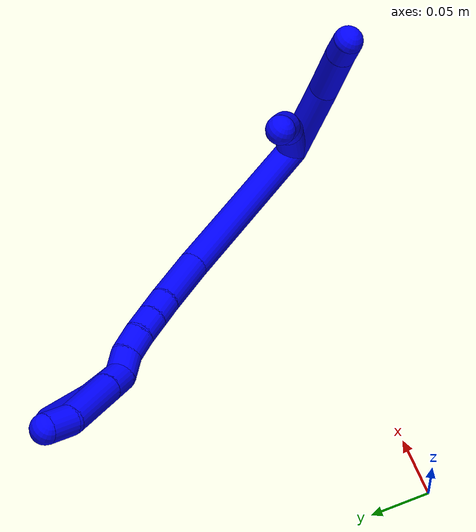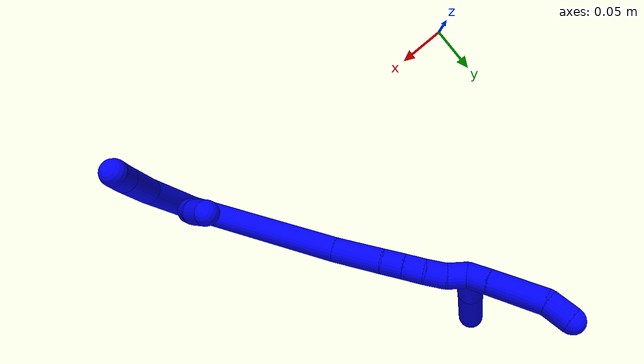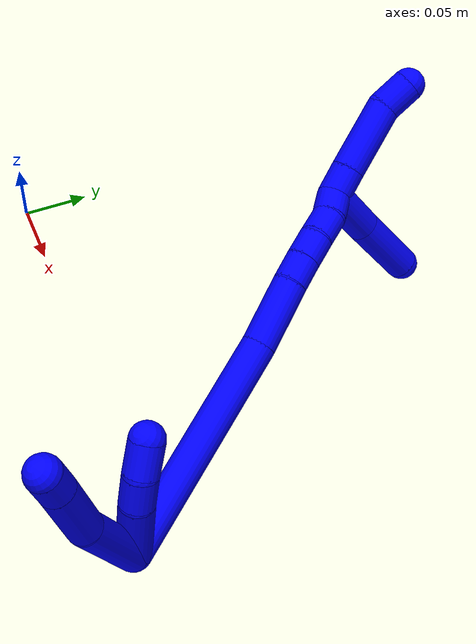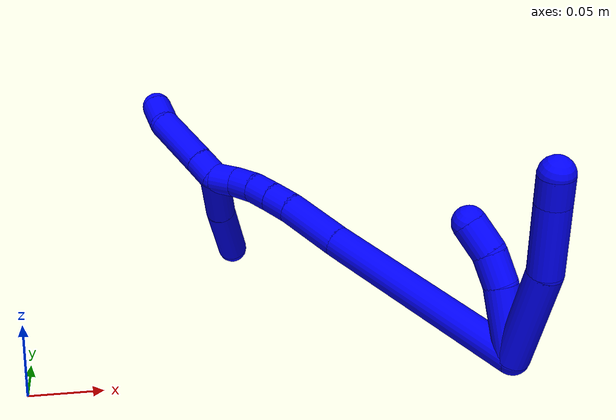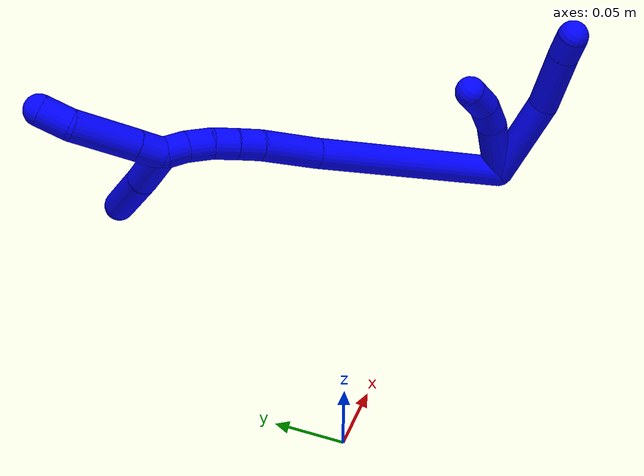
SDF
<sdf version="1.7">
 <world name="default">
  <model name="1">
   <static>0</static>
   <link name="1">
    <collision name="collision-cylinder-e_1_2_8">
     <pose>-0.004051 -0.002596 -0.038727 3.07467 -0.104007 -1.99852</pose>
     <geometry><cylinder><radius>0.0125</radius><length>0.078049</length></cylinder></geometry>
     <surface>
      <friction><ode><mu>1.16</mu><mu2>1.16</mu2><slip1>0</slip1><slip2>0</slip2></ode></friction>
      <contact><ode><kp>1e+06</kp><kd>1</kd><max_vel>0</max_vel><min_depth>0.001</min_depth></ode></contact>
     </surface>
    </collision>
    <visual name="visual-cylinder-e_1_2_8">
     <pose>-0.004051 -0.002596 -0.038727 3.07467 -0.104007 -1.99852</pose>
     <geometry><cylinder><radius>0.0125</radius><length>0.078049</length></cylinder></geometry>
     <material><ambient>0 0 1 1</ambient></material>
    </visual>
    <collision name="collision-cylinder-e_2_8_9">
     <pose>-0.011338 -0.001241 -0.102809 -2.98704 -0.125415 1.36275</pose>
     <geometry><cylinder><radius>0.0125</radius><length>0.05173</length></cylinder></geometry>
     <surface>
      <friction><ode><mu>1.16</mu><mu2>1.16</mu2><slip1>0</slip1><slip2>0</slip2></ode></friction>
      <contact><ode><kp>1e+06</kp><kd>1</kd><max_vel>0</max_vel><min_depth>0.001</min_depth></ode></contact>
     </surface>
    </collision>
    <visual name="visual-cylinder-e_2_8_9">
     <pose>-0.011338 -0.001241 -0.102809 -2.98704 -0.125415 1.36275</pose>
     <geometry><cylinder><radius>0.0125</radius><length>0.05173</length></cylinder></geometry>
     <material><ambient>0 0 1 1</ambient></material>
    </visual>
    <collision name="collision-cylinder-e_3_9_6">
     <pose>-0.015411 0.004072 -0.138149 -3.00588 -0.082871 1.09554</pose>
     <geometry><cylinder><radius>0.0125</radius><length>0.020221</length></cylinder></geometry>
     <surface>
      <friction><ode><mu>1.16</mu><mu2>1.16</mu2><slip1>0</slip1><slip2>0</slip2></ode></friction>
      <contact><ode><kp>1e+06</kp><kd>1</kd><max_vel>0</max_vel><min_depth>0.001</min_depth></ode></contact>
     </surface>
    </collision>
    <visual name="visual-cylinder-e_3_9_6">
     <pose>-0.015411 0.004072 -0.138149 -3.00588 -0.082871 1.09554</pose>
     <geometry><cylinder><radius>0.0125</radius><length>0.020221</length></cylinder></geometry>
     <material><ambient>0 0 1 1</ambient></material>
    </visual>
    <collision name="collision-cylinder-e_1_2_10">
     <pose>-0.008042 0.012112 -0.021745 -2.63341 -0.312521 1.09056</pose>
     <geometry><cylinder><radius>0.0125</radius><length>0.052315</length></cylinder></geometry>
     <surface>
      <friction><ode><mu>1.16</mu><mu2>1.16</mu2><slip1>0</slip1><slip2>0</slip2></ode></friction>
      <contact><ode><kp>1e+06</kp><kd>1</kd><max_vel>0</max_vel><min_depth>0.001</min_depth></ode></contact>
     </surface>
    </collision>
    <visual name="visual-cylinder-e_1_2_10">
     <pose>-0.008042 0.012112 -0.021745 -2.63341 -0.312521 1.09056</pose>
     <geometry><cylinder><radius>0.0125</radius><length>0.052315</length></cylinder></geometry>
     <material><ambient>0 0 1 1</ambient></material>
    </visual>
    <collision name="collision-cylinder-e_2_10_11">
     <pose>-0.019137 0.031538 -0.052105 -2.43761 -0.263825 0.693323</pose>
     <geometry><cylinder><radius>0.0125</radius><length>0.023411</length></cylinder></geometry>
     <surface>
      <friction><ode><mu>1.16</mu><mu2>1.16</mu2><slip1>0</slip1><slip2>0</slip2></ode></friction>
      <contact><ode><kp>1e+06</kp><kd>1</kd><max_vel>0</max_vel><min_depth>0.001</min_depth></ode></contact>
     </surface>
    </collision>
    <visual name="visual-cylinder-e_2_10_11">
     <pose>-0.019137 0.031538 -0.052105 -2.43761 -0.263825 0.693323</pose>
     <geometry><cylinder><radius>0.0125</radius><length>0.023411</length></cylinder></geometry>
     <material><ambient>0 0 1 1</ambient></material>
    </visual>
    <collision name="collision-cylinder-e_3_11_5">
     <pose>-0.024249 0.04868 -0.067535 -2.17722 -0.170471 0.32364</pose>
     <geometry><cylinder><radius>0.0125</radius><length>0.024273</length></cylinder></geometry>
     <surface>
      <friction><ode><mu>1.16</mu><mu2>1.16</mu2><slip1>0</slip1><slip2>0</slip2></ode></friction>
      <contact><ode><kp>1e+06</kp><kd>1</kd><max_vel>0</max_vel><min_depth>0.001</min_depth></ode></contact>
     </surface>
    </collision>
    <visual name="visual-cylinder-e_3_11_5">
     <pose>-0.024249 0.04868 -0.067535 -2.17722 -0.170471 0.32364</pose>
     <geometry><cylinder><radius>0.0125</radius><length>0.024273</length></cylinder></geometry>
     <material><ambient>0 0 1 1</ambient></material>
    </visual>
    <collision name="collision-cylinder-e_1_2_12">
     <pose>-0.0174 0.082013 0.00246 -1.54081 -0.208974 0.202842</pose>
     <geometry><cylinder><radius>0.0125</radius><length>0.16775</length></cylinder></geometry>
     <surface>
      <friction><ode><mu>1.16</mu><mu2>1.16</mu2><slip1>0</slip1><slip2>0</slip2></ode></friction>
      <contact><ode><kp>1e+06</kp><kd>1</kd><max_vel>0</max_vel><min_depth>0.001</min_depth></ode></contact>
     </surface>
    </collision>
    <visual name="visual-cylinder-e_1_2_12">
     <pose>-0.0174 0.082013 0.00246 -1.54081 -0.208974 0.202842</pose>
     <geometry><cylinder><radius>0.0125</radius><length>0.16775</length></cylinder></geometry>
     <material><ambient>0 0 1 1</ambient></material>
    </visual>
    <collision name="collision-cylinder-e_2_12_13">
     <pose>-0.039336 0.188706 0.003503 -1.62817 -0.181463 0.192121</pose>
     <geometry><cylinder><radius>0.0125</radius><length>0.050264</length></cylinder></geometry>
     <surface>
      <friction><ode><mu>1.16</mu><mu2>1.16</mu2><slip1>0</slip1><slip2>0</slip2></ode></friction>
      <contact><ode><kp>1e+06</kp><kd>1</kd><max_vel>0</max_vel><min_depth>0.001</min_depth></ode></contact>
     </surface>
    </collision>
    <visual name="visual-cylinder-e_2_12_13">
     <pose>-0.039336 0.188706 0.003503 -1.62817 -0.181463 0.192121</pose>
     <geometry><cylinder><radius>0.0125</radius><length>0.050264</length></cylinder></geometry>
     <material><ambient>0 0 1 1</ambient></material>
    </visual>
    <collision name="collision-cylinder-e_3_13_14">
     <pose>-0.045482 0.223605 0.002557 -1.52467 -0.156129 0.149115</pose>
     <geometry><cylinder><radius>0.0125</radius><length>0.020715</length></cylinder></geometry>
     <surface>
      <friction><ode><mu>1.16</mu><mu2>1.16</mu2><slip1>0</slip1><slip2>0</slip2></ode></friction>
      <contact><ode><kp>1e+06</kp><kd>1</kd><max_vel>0</max_vel><min_depth>0.001</min_depth></ode></contact>
     </surface>
    </collision>
    <visual name="visual-cylinder-e_3_13_14">
     <pose>-0.045482 0.223605 0.002557 -1.52467 -0.156129 0.149115</pose>
     <geometry><cylinder><radius>0.0125</radius><length>0.020715</length></cylinder></geometry>
     <material><ambient>0 0 1 1</ambient></material>
    </visual>
    <collision name="collision-cylinder-e_4_14_15">
     <pose>-0.048706 0.243664 0.003892 -1.48322 -0.161872 0.148335</pose>
     <geometry><cylinder><radius>0.0125</radius><length>0.020014</length></cylinder></geometry>
     <surface>
      <friction><ode><mu>1.16</mu><mu2>1.16</mu2><slip1>0</slip1><slip2>0</slip2></ode></friction>
      <contact><ode><kp>1e+06</kp><kd>1</kd><max_vel>0</max_vel><min_depth>0.001</min_depth></ode></contact>
     </surface>
    </collision>
    <visual name="visual-cylinder-e_4_14_15">
     <pose>-0.048706 0.243664 0.003892 -1.48322 -0.161872 0.148335</pose>
     <geometry><cylinder><radius>0.0125</radius><length>0.020014</length></cylinder></geometry>
     <material><ambient>0 0 1 1</ambient></material>
    </visual>
    <collision name="collision-cylinder-e_5_15_16">
     <pose>-0.051241 0.263684 0.007084 -1.34604 -0.088122 0.070266</pose>
     <geometry><cylinder><radius>0.0125</radius><length>0.020968</length></cylinder></geometry>
     <surface>
      <friction><ode><mu>1.16</mu><mu2>1.16</mu2><slip1>0</slip1><slip2>0</slip2></ode></friction>
      <contact><ode><kp>1e+06</kp><kd>1</kd><max_vel>0</max_vel><min_depth>0.001</min_depth></ode></contact>
     </surface>
    </collision>
    <visual name="visual-cylinder-e_5_15_16">
     <pose>-0.051241 0.263684 0.007084 -1.34604 -0.088122 0.070266</pose>
     <geometry><cylinder><radius>0.0125</radius><length>0.020968</length></cylinder></geometry>
     <material><ambient>0 0 1 1</ambient></material>
    </visual>
    <collision name="collision-cylinder-e_6_16_1">
     <pose>-0.050531 0.283787 0.01074 -1.43766 0.161687 -0.141548</pose>
     <geometry><cylinder><radius>0.0125</radius><length>0.020288</length></cylinder></geometry>
     <surface>
      <friction><ode><mu>1.16</mu><mu2>1.16</mu2><slip1>0</slip1><slip2>0</slip2></ode></friction>
      <contact><ode><kp>1e+06</kp><kd>1</kd><max_vel>0</max_vel><min_depth>0.001</min_depth></ode></contact>
     </surface>
    </collision>
    <visual name="visual-cylinder-e_6_16_1">
     <pose>-0.050531 0.283787 0.01074 -1.43766 0.161687 -0.141548</pose>
     <geometry><cylinder><radius>0.0125</radius><length>0.020288</length></cylinder></geometry>
     <material><ambient>0 0 1 1</ambient></material>
    </visual>
    <collision name="collision-cylinder-e_1_1_17">
     <pose>-0.053179 0.294023 0.033548 -0.014563 -0.196734 0.001437</pose>
     <geometry><cylinder><radius>0.0125</radius><length>0.043807</length></cylinder></geometry>
     <surface>
      <friction><ode><mu>1.16</mu><mu2>1.16</mu2><slip1>0</slip1><slip2>0</slip2></ode></friction>
      <contact><ode><kp>1e+06</kp><kd>1</kd><max_vel>0</max_vel><min_depth>0.001</min_depth></ode></contact>
     </surface>
    </collision>
    <visual name="visual-cylinder-e_1_1_17">
     <pose>-0.053179 0.294023 0.033548 -0.014563 -0.196734 0.001437</pose>
     <geometry><cylinder><radius>0.0125</radius><length>0.043807</length></cylinder></geometry>
     <material><ambient>0 0 1 1</ambient></material>
    </visual>
    <collision name="collision-cylinder-e_2_17_4">
     <pose>-0.065308 0.293729 0.081998 0.022515 -0.283042 -0.003208</pose>
     <geometry><cylinder><radius>0.0125</radius><length>0.056193</length></cylinder></geometry>
     <surface>
      <friction><ode><mu>1.16</mu><mu2>1.16</mu2><slip1>0</slip1><slip2>0</slip2></ode></friction>
      <contact><ode><kp>1e+06</kp><kd>1</kd><max_vel>0</max_vel><min_depth>0.001</min_depth></ode></contact>
     </surface>
    </collision>
    <visual name="visual-cylinder-e_2_17_4">
     <pose>-0.065308 0.293729 0.081998 0.022515 -0.283042 -0.003208</pose>
     <geometry><cylinder><radius>0.0125</radius><length>0.056193</length></cylinder></geometry>
     <material><ambient>0 0 1 1</ambient></material>
    </visual>
    <collision name="collision-cylinder-e_1_1_18">
     <pose>-0.052022 0.303964 0.010064 -1.76395 -0.290579 0.351751</pose>
     <geometry><cylinder><radius>0.0125</radius><length>0.021809</length></cylinder></geometry>
     <surface>
      <friction><ode><mu>1.16</mu><mu2>1.16</mu2><slip1>0</slip1><slip2>0</slip2></ode></friction>
      <contact><ode><kp>1e+06</kp><kd>1</kd><max_vel>0</max_vel><min_depth>0.001</min_depth></ode></contact>
     </surface>
    </collision>
    <visual name="visual-cylinder-e_1_1_18">
     <pose>-0.052022 0.303964 0.010064 -1.76395 -0.290579 0.351751</pose>
     <geometry><cylinder><radius>0.0125</radius><length>0.021809</length></cylinder></geometry>
     <material><ambient>0 0 1 1</ambient></material>
    </visual>
    <collision name="collision-cylinder-e_2_18_19">
     <pose>-0.062973 0.339479 0.003937 -1.7325 -0.296752 0.34811</pose>
     <geometry><cylinder><radius>0.0125</radius><length>0.053532</length></cylinder></geometry>
     <surface>
      <friction><ode><mu>1.16</mu><mu2>1.16</mu2><slip1>0</slip1><slip2>0</slip2></ode></friction>
      <contact><ode><kp>1e+06</kp><kd>1</kd><max_vel>0</max_vel><min_depth>0.001</min_depth></ode></contact>
     </surface>
    </collision>
    <visual name="visual-cylinder-e_2_18_19">
     <pose>-0.062973 0.339479 0.003937 -1.7325 -0.296752 0.34811</pose>
     <geometry><cylinder><radius>0.0125</radius><length>0.053532</length></cylinder></geometry>
     <material><ambient>0 0 1 1</ambient></material>
    </visual>
    <collision name="collision-cylinder-e_3_19_3">
     <pose>-0.077925 0.374786 -0.000789 -1.63099 -0.616086 0.651753</pose>
     <geometry><cylinder><radius>0.0125</radius><length>0.024658</length></cylinder></geometry>
     <surface>
      <friction><ode><mu>1.16</mu><mu2>1.16</mu2><slip1>0</slip1><slip2>0</slip2></ode></friction>
      <contact><ode><kp>1e+06</kp><kd>1</kd><max_vel>0</max_vel><min_depth>0.001</min_depth></ode></contact>
     </surface>
    </collision>
    <visual name="visual-cylinder-e_3_19_3">
     <pose>-0.077925 0.374786 -0.000789 -1.63099 -0.616086 0.651753</pose>
     <geometry><cylinder><radius>0.0125</radius><length>0.024658</length></cylinder></geometry>
     <material><ambient>0 0 1 1</ambient></material>
    </visual>
    <collision name="collision-sphere-3">
     <pose>-0.085049 0.38483 -0.001394 0 -0 0</pose>
     <geometry><sphere><radius>0.0125</radius></sphere></geometry>
     <surface>
      <friction><ode><mu>1.16</mu><mu2>1.16</mu2><slip1>0</slip1><slip2>0</slip2></ode></friction>
      <contact><ode><kp>1e+06</kp><kd>1</kd><max_vel>0</max_vel><min_depth>0.001</min_depth></ode></contact>
     </surface>
    </collision>
    <visual name="visual-sphere-3">
     <pose>-0.085049 0.38483 -0.001394 0 -0 0</pose>
     <geometry><sphere><radius>0.0125</radius></sphere></geometry>
     <material><ambient>0 0 1 1</ambient></material>
    </visual>
    <collision name="collision-sphere-19">
     <pose>-0.0708 0.364741 -0.000184 0 -0 0</pose>
     <geometry><sphere><radius>0.0125</radius></sphere></geometry>
     <surface>
      <friction><ode><mu>1.16</mu><mu2>1.16</mu2><slip1>0</slip1><slip2>0</slip2></ode></friction>
      <contact><ode><kp>1e+06</kp><kd>1</kd><max_vel>0</max_vel><min_depth>0.001</min_depth></ode></contact>
     </surface>
    </collision>
    <visual name="visual-sphere-19">
     <pose>-0.0708 0.364741 -0.000184 0 -0 0</pose>
     <geometry><sphere><radius>0.0125</radius></sphere></geometry>
     <material><ambient>0 0 1 1</ambient></material>
    </visual>
    <collision name="collision-sphere-11">
     <pose>-0.02219 0.038852 -0.060719 0 -0 0</pose>
     <geometry><sphere><radius>0.0125</radius></sphere></geometry>
     <surface>
      <friction><ode><mu>1.16</mu><mu2>1.16</mu2><slip1>0</slip1><slip2>0</slip2></ode></friction>
      <contact><ode><kp>1e+06</kp><kd>1</kd><max_vel>0</max_vel><min_depth>0.001</min_depth></ode></contact>
     </surface>
    </collision>
    <visual name="visual-sphere-11">
     <pose>-0.02219 0.038852 -0.060719 0 -0 0</pose>
     <geometry><sphere><radius>0.0125</radius></sphere></geometry>
     <material><ambient>0 0 1 1</ambient></material>
    </visual>
    <collision name="collision-sphere-10">
     <pose>-0.016085 0.024223 -0.04349 0 -0 0</pose>
     <geometry><sphere><radius>0.0125</radius></sphere></geometry>
     <surface>
      <friction><ode><mu>1.16</mu><mu2>1.16</mu2><slip1>0</slip1><slip2>0</slip2></ode></friction>
      <contact><ode><kp>1e+06</kp><kd>1</kd><max_vel>0</max_vel><min_depth>0.001</min_depth></ode></contact>
     </surface>
    </collision>
    <visual name="visual-sphere-10">
     <pose>-0.016085 0.024223 -0.04349 0 -0 0</pose>
     <geometry><sphere><radius>0.0125</radius></sphere></geometry>
     <material><ambient>0 0 1 1</ambient></material>
    </visual>
    <collision name="collision-sphere-6">
     <pose>-0.016248 0.005436 -0.148132 0 -0 0</pose>
     <geometry><sphere><radius>0.0125</radius></sphere></geometry>
     <surface>
      <friction><ode><mu>1.16</mu><mu2>1.16</mu2><slip1>0</slip1><slip2>0</slip2></ode></friction>
      <contact><ode><kp>1e+06</kp><kd>1</kd><max_vel>0</max_vel><min_depth>0.001</min_depth></ode></contact>
     </surface>
    </collision>
    <visual name="visual-sphere-6">
     <pose>-0.016248 0.005436 -0.148132 0 -0 0</pose>
     <geometry><sphere><radius>0.0125</radius></sphere></geometry>
     <material><ambient>0 0 1 1</ambient></material>
    </visual>
    <collision name="collision-sphere-9">
     <pose>-0.014574 0.002709 -0.128165 0 -0 0</pose>
     <geometry><sphere><radius>0.0125</radius></sphere></geometry>
     <surface>
      <friction><ode><mu>1.16</mu><mu2>1.16</mu2><slip1>0</slip1><slip2>0</slip2></ode></friction>
      <contact><ode><kp>1e+06</kp><kd>1</kd><max_vel>0</max_vel><min_depth>0.001</min_depth></ode></contact>
     </surface>
    </collision>
    <visual name="visual-sphere-9">
     <pose>-0.014574 0.002709 -0.128165 0 -0 0</pose>
     <geometry><sphere><radius>0.0125</radius></sphere></geometry>
     <material><ambient>0 0 1 1</ambient></material>
    </visual>
    <collision name="collision-sphere-2">
     <geometry><sphere><radius>0.0125</radius></sphere></geometry>
     <surface>
      <friction><ode><mu>1.16</mu><mu2>1.16</mu2><slip1>0</slip1><slip2>0</slip2></ode></friction>
      <contact><ode><kp>1e+06</kp><kd>1</kd><max_vel>0</max_vel><min_depth>0.001</min_depth></ode></contact>
     </surface>
    </collision>
    <visual name="visual-sphere-2">
     <geometry><sphere><radius>0.0125</radius></sphere></geometry>
     <material><ambient>0 0 1 1</ambient></material>
    </visual>
    <collision name="collision-sphere-8">
     <pose>-0.008103 -0.005191 -0.077453 0 -0 0</pose>
     <geometry><sphere><radius>0.0125</radius></sphere></geometry>
     <surface>
      <friction><ode><mu>1.16</mu><mu2>1.16</mu2><slip1>0</slip1><slip2>0</slip2></ode></friction>
      <contact><ode><kp>1e+06</kp><kd>1</kd><max_vel>0</max_vel><min_depth>0.001</min_depth></ode></contact>
     </surface>
    </collision>
    <visual name="visual-sphere-8">
     <pose>-0.008103 -0.005191 -0.077453 0 -0 0</pose>
     <geometry><sphere><radius>0.0125</radius></sphere></geometry>
     <material><ambient>0 0 1 1</ambient></material>
    </visual>
    <collision name="collision-sphere-5">
     <pose>-0.026308 0.058508 -0.074352 0 -0 0</pose>
     <geometry><sphere><radius>0.0125</radius></sphere></geometry>
     <surface>
      <friction><ode><mu>1.16</mu><mu2>1.16</mu2><slip1>0</slip1><slip2>0</slip2></ode></friction>
      <contact><ode><kp>1e+06</kp><kd>1</kd><max_vel>0</max_vel><min_depth>0.001</min_depth></ode></contact>
     </surface>
    </collision>
    <visual name="visual-sphere-5">
     <pose>-0.026308 0.058508 -0.074352 0 -0 0</pose>
     <geometry><sphere><radius>0.0125</radius></sphere></geometry>
     <material><ambient>0 0 1 1</ambient></material>
    </visual>
    <collision name="collision-sphere-12">
     <pose>-0.034801 0.164027 0.00492 0 -0 0</pose>
     <geometry><sphere><radius>0.0125</radius></sphere></geometry>
     <surface>
      <friction><ode><mu>1.16</mu><mu2>1.16</mu2><slip1>0</slip1><slip2>0</slip2></ode></friction>
      <contact><ode><kp>1e+06</kp><kd>1</kd><max_vel>0</max_vel><min_depth>0.001</min_depth></ode></contact>
     </surface>
    </collision>
    <visual name="visual-sphere-12">
     <pose>-0.034801 0.164027 0.00492 0 -0 0</pose>
     <geometry><sphere><radius>0.0125</radius></sphere></geometry>
     <material><ambient>0 0 1 1</ambient></material>
    </visual>
    <collision name="collision-sphere-13">
     <pose>-0.043872 0.213385 0.002085 0 -0 0</pose>
     <geometry><sphere><radius>0.0125</radius></sphere></geometry>
     <surface>
      <friction><ode><mu>1.16</mu><mu2>1.16</mu2><slip1>0</slip1><slip2>0</slip2></ode></friction>
      <contact><ode><kp>1e+06</kp><kd>1</kd><max_vel>0</max_vel><min_depth>0.001</min_depth></ode></contact>
     </surface>
    </collision>
    <visual name="visual-sphere-13">
     <pose>-0.043872 0.213385 0.002085 0 -0 0</pose>
     <geometry><sphere><radius>0.0125</radius></sphere></geometry>
     <material><ambient>0 0 1 1</ambient></material>
    </visual>
    <collision name="collision-sphere-14">
     <pose>-0.047093 0.233826 0.003029 0 -0 0</pose>
     <geometry><sphere><radius>0.0125</radius></sphere></geometry>
     <surface>
      <friction><ode><mu>1.16</mu><mu2>1.16</mu2><slip1>0</slip1><slip2>0</slip2></ode></friction>
      <contact><ode><kp>1e+06</kp><kd>1</kd><max_vel>0</max_vel><min_depth>0.001</min_depth></ode></contact>
     </surface>
    </collision>
    <visual name="visual-sphere-14">
     <pose>-0.047093 0.233826 0.003029 0 -0 0</pose>
     <geometry><sphere><radius>0.0125</radius></sphere></geometry>
     <material><ambient>0 0 1 1</ambient></material>
    </visual>
    <collision name="collision-sphere-15">
     <pose>-0.050319 0.253503 0.004756 0 -0 0</pose>
     <geometry><sphere><radius>0.0125</radius></sphere></geometry>
     <surface>
      <friction><ode><mu>1.16</mu><mu2>1.16</mu2><slip1>0</slip1><slip2>0</slip2></ode></friction>
      <contact><ode><kp>1e+06</kp><kd>1</kd><max_vel>0</max_vel><min_depth>0.001</min_depth></ode></contact>
     </surface>
    </collision>
    <visual name="visual-sphere-15">
     <pose>-0.050319 0.253503 0.004756 0 -0 0</pose>
     <geometry><sphere><radius>0.0125</radius></sphere></geometry>
     <material><ambient>0 0 1 1</ambient></material>
    </visual>
    <collision name="collision-sphere-16">
     <pose>-0.052164 0.273864 0.009411 0 -0 0</pose>
     <geometry><sphere><radius>0.0125</radius></sphere></geometry>
     <surface>
      <friction><ode><mu>1.16</mu><mu2>1.16</mu2><slip1>0</slip1><slip2>0</slip2></ode></friction>
      <contact><ode><kp>1e+06</kp><kd>1</kd><max_vel>0</max_vel><min_depth>0.001</min_depth></ode></contact>
     </surface>
    </collision>
    <visual name="visual-sphere-16">
     <pose>-0.052164 0.273864 0.009411 0 -0 0</pose>
     <geometry><sphere><radius>0.0125</radius></sphere></geometry>
     <material><ambient>0 0 1 1</ambient></material>
    </visual>
    <collision name="collision-sphere-1">
     <pose>-0.048898 0.29371 0.012069 0 -0 0</pose>
     <geometry><sphere><radius>0.0125</radius></sphere></geometry>
     <surface>
      <friction><ode><mu>1.16</mu><mu2>1.16</mu2><slip1>0</slip1><slip2>0</slip2></ode></friction>
      <contact><ode><kp>1e+06</kp><kd>1</kd><max_vel>0</max_vel><min_depth>0.001</min_depth></ode></contact>
     </surface>
    </collision>
    <visual name="visual-sphere-1">
     <pose>-0.048898 0.29371 0.012069 0 -0 0</pose>
     <geometry><sphere><radius>0.0125</radius></sphere></geometry>
     <material><ambient>0 0 1 1</ambient></material>
    </visual>
    <collision name="collision-sphere-18">
     <pose>-0.055147 0.314217 0.008058 0 -0 0</pose>
     <geometry><sphere><radius>0.0125</radius></sphere></geometry>
     <surface>
      <friction><ode><mu>1.16</mu><mu2>1.16</mu2><slip1>0</slip1><slip2>0</slip2></ode></friction>
      <contact><ode><kp>1e+06</kp><kd>1</kd><max_vel>0</max_vel><min_depth>0.001</min_depth></ode></contact>
     </surface>
    </collision>
    <visual name="visual-sphere-18">
     <pose>-0.055147 0.314217 0.008058 0 -0 0</pose>
     <geometry><sphere><radius>0.0125</radius></sphere></geometry>
     <material><ambient>0 0 1 1</ambient></material>
    </visual>
    <collision name="collision-sphere-17">
     <pose>-0.057461 0.294336 0.055027 0 -0 0</pose>
     <geometry><sphere><radius>0.0125</radius></sphere></geometry>
     <surface>
      <friction><ode><mu>1.16</mu><mu2>1.16</mu2><slip1>0</slip1><slip2>0</slip2></ode></friction>
      <contact><ode><kp>1e+06</kp><kd>1</kd><max_vel>0</max_vel><min_depth>0.001</min_depth></ode></contact>
     </surface>
    </collision>
    <visual name="visual-sphere-17">
     <pose>-0.057461 0.294336 0.055027 0 -0 0</pose>
     <geometry><sphere><radius>0.0125</radius></sphere></geometry>
     <material><ambient>0 0 1 1</ambient></material>
    </visual>
    <collision name="collision-sphere-4">
     <pose>-0.073154 0.293121 0.10897 0 -0 0</pose>
     <geometry><sphere><radius>0.0125</radius></sphere></geometry>
     <surface>
      <friction><ode><mu>1.16</mu><mu2>1.16</mu2><slip1>0</slip1><slip2>0</slip2></ode></friction>
      <contact><ode><kp>1e+06</kp><kd>1</kd><max_vel>0</max_vel><min_depth>0.001</min_depth></ode></contact>
     </surface>
    </collision>
    <visual name="visual-sphere-4">
     <pose>-0.073154 0.293121 0.10897 0 -0 0</pose>
     <geometry><sphere><radius>0.0125</radius></sphere></geometry>
     <material><ambient>0 0 1 1</ambient></material>
    </visual>
    <inertial>
     <pose>-0.032015 0.146449 -0.010076 0 -0 0</pose>
     <mass>0.75</mass>
     <inertia>
      <ixx>0.000504</ixx>
      <ixy>0</ixy>
      <ixz>0</ixz>
      <iyy>0.000176</iyy>
      <iyz>0</iyz>
      <izz>-0.000336</izz>
     </inertia>
    </inertial>
   </link>
   <pose>0.328062 -0.021076 0.01149 2.86578 0.329726 -2.38228</pose>
  </model>
 </world>
</sdf>
